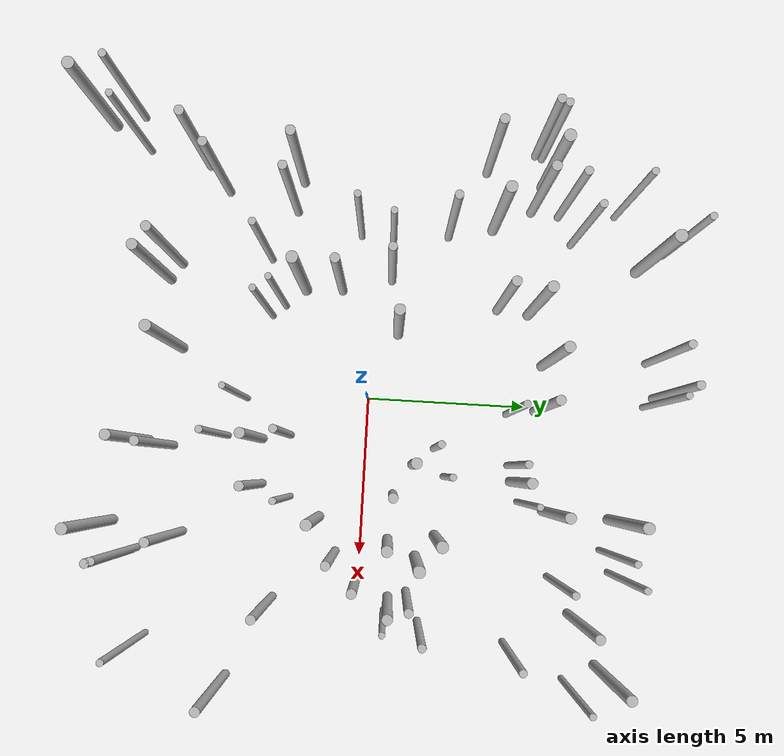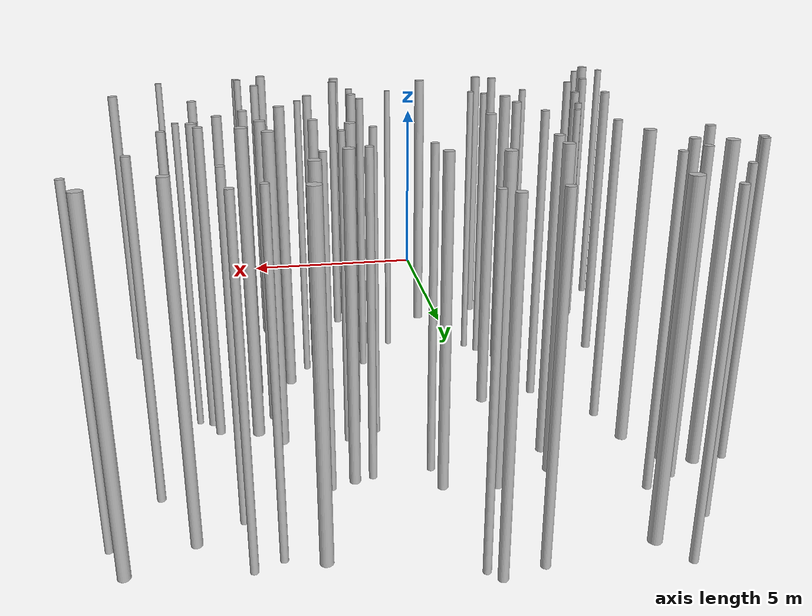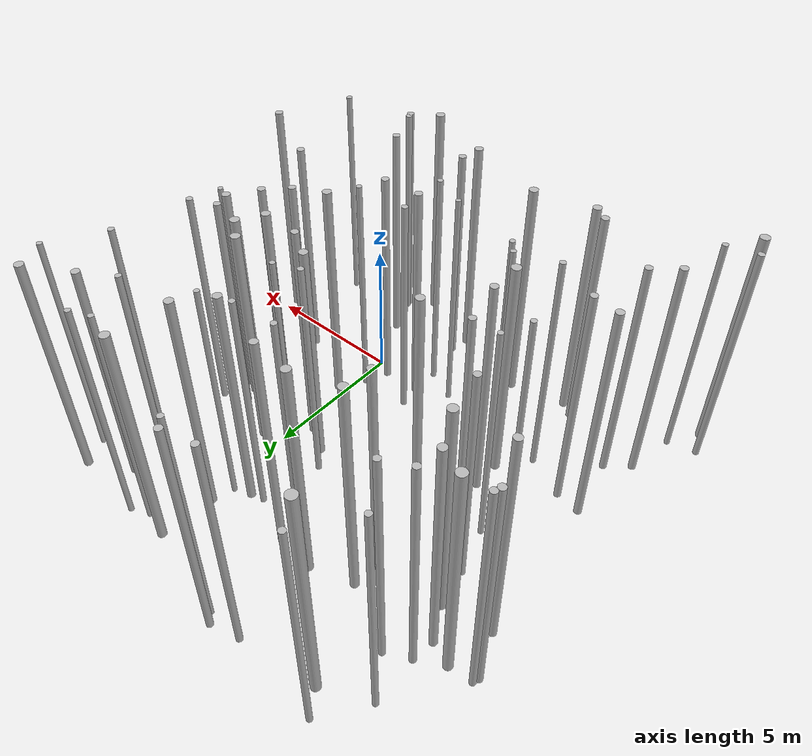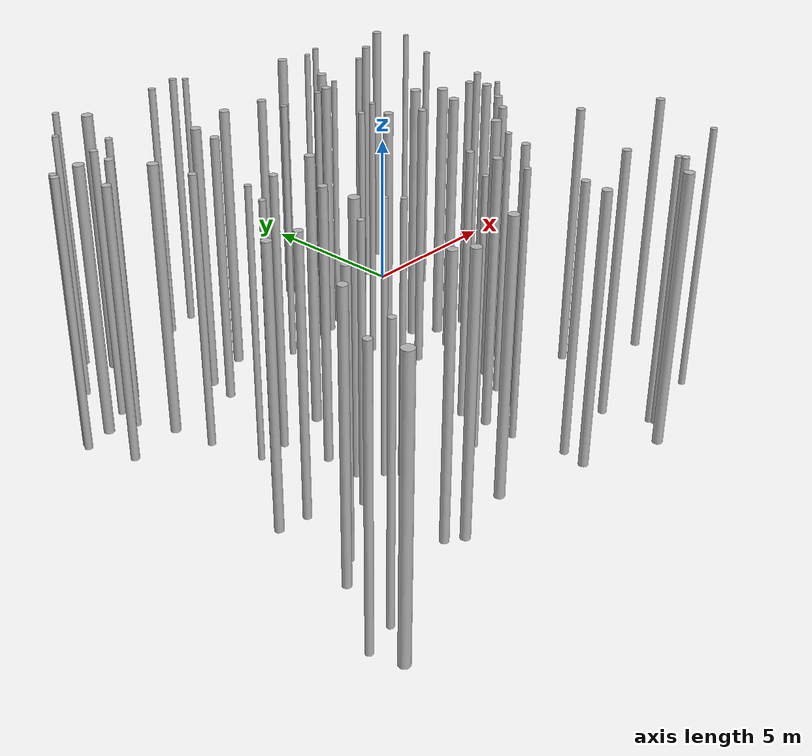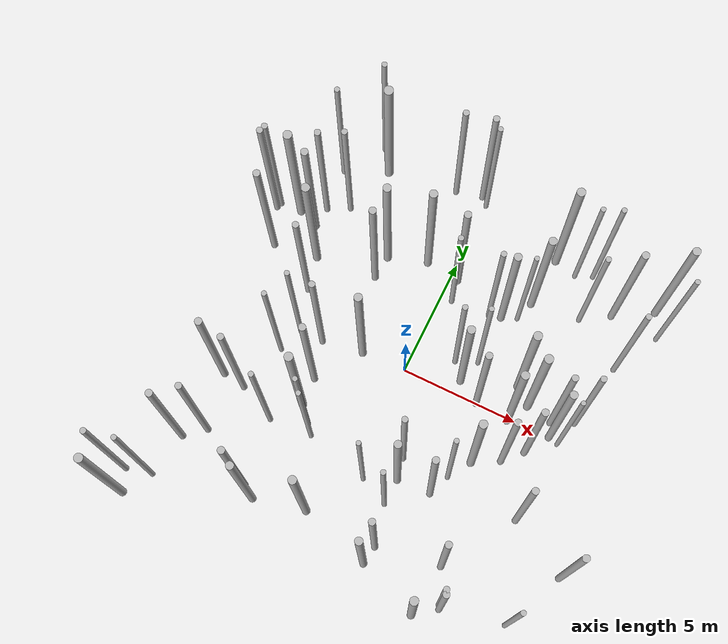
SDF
<sdf version="1.4">
 <world name="default">
  <scene><shadows>false</shadows></scene>
  <model name="forest">
   <static>true</static>
   <link name="tree0">
    <pose>-5.968594018720914 2.4226567751765558 0 0 0 0.825688294500559</pose>
    <visual name="visual">
     <material>
      <script><uri>model://tree_simple/scripts</uri><uri>model://tree_simple/materials/textures</uri></script>
     </material>
     <geometry><cylinder><radius>0.13771336701674056</radius><length>10</length></cylinder></geometry>
    </visual>
    <collision name="collision">
     <geometry><cylinder><radius>0.13771336701674056</radius><length>10</length></cylinder></geometry>
     <max_contacts>0</max_contacts>
    </collision>
   </link>
   <link name="tree1">
    <pose>-5.828001783962851 -0.5855949825237836 0 0 0 5.593154927796894</pose>
    <visual name="visual">
     <material>
      <script><uri>model://tree_simple/scripts</uri><uri>model://tree_simple/materials/textures</uri></script>
     </material>
     <geometry><cylinder><radius>0.11154716958372508</radius><length>10</length></cylinder></geometry>
    </visual>
    <collision name="collision">
     <geometry><cylinder><radius>0.11154716958372508</radius><length>10</length></cylinder></geometry>
     <max_contacts>0</max_contacts>
    </collision>
   </link>
   <link name="tree2">
    <pose>-8.2957308520775 3.642921222950452 0 0 0 3.2755186130311182</pose>
    <visual name="visual">
     <material>
      <script><uri>model://tree_simple/scripts</uri><uri>model://tree_simple/materials/textures</uri></script>
     </material>
     <geometry><cylinder><radius>0.15237272965991247</radius><length>10</length></cylinder></geometry>
    </visual>
    <collision name="collision">
     <geometry><cylinder><radius>0.15237272965991247</radius><length>10</length></cylinder></geometry>
     <max_contacts>0</max_contacts>
    </collision>
   </link>
   <link name="tree3">
    <pose>-4.3250576620407095 0.5497889428312561 0 0 0 4.661224470194231</pose>
    <visual name="visual">
     <material>
      <script><uri>model://tree_simple/scripts</uri><uri>model://tree_simple/materials/textures</uri></script>
     </material>
     <geometry><cylinder><radius>0.13722675284932398</radius><length>10</length></cylinder></geometry>
    </visual>
    <collision name="collision">
     <geometry><cylinder><radius>0.13722675284932398</radius><length>10</length></cylinder></geometry>
     <max_contacts>0</max_contacts>
    </collision>
   </link>
   <link name="tree4">
    <pose>-6.991047748544272 8.170897677864943 0 0 0 1.2887613671992935</pose>
    <visual name="visual">
     <material>
      <script><uri>model://tree_simple/scripts</uri><uri>model://tree_simple/materials/textures</uri></script>
     </material>
     <geometry><cylinder><radius>0.11570327790955867</radius><length>10</length></cylinder></geometry>
    </visual>
    <collision name="collision">
     <geometry><cylinder><radius>0.11570327790955867</radius><length>10</length></cylinder></geometry>
     <max_contacts>0</max_contacts>
    </collision>
   </link>
   <link name="tree5">
    <pose>4.609959606334741 8.2411828639138 0 0 0 0.1738286364164625</pose>
    <visual name="visual">
     <material>
      <script><uri>model://tree_simple/scripts</uri><uri>model://tree_simple/materials/textures</uri></script>
     </material>
     <geometry><cylinder><radius>0.10880113426822638</radius><length>10</length></cylinder></geometry>
    </visual>
    <collision name="collision">
     <geometry><cylinder><radius>0.10880113426822638</radius><length>10</length></cylinder></geometry>
     <max_contacts>0</max_contacts>
    </collision>
   </link>
   <link name="tree6">
    <pose>8.58407813529724 8.262892080322889 0 0 0 4.68353519349898</pose>
    <visual name="visual">
     <material>
      <script><uri>model://tree_simple/scripts</uri><uri>model://tree_simple/materials/textures</uri></script>
     </material>
     <geometry><cylinder><radius>0.17228464868539978</radius><length>10</length></cylinder></geometry>
    </visual>
    <collision name="collision">
     <geometry><cylinder><radius>0.17228464868539978</radius><length>10</length></cylinder></geometry>
     <max_contacts>0</max_contacts>
    </collision>
   </link>
   <link name="tree7">
    <pose>1.426253436714882 2.306528859032028 0 0 0 0.12005729670360911</pose>
    <visual name="visual">
     <material>
      <script><uri>model://tree_simple/scripts</uri><uri>model://tree_simple/materials/textures</uri></script>
     </material>
     <geometry><cylinder><radius>0.11951974037676621</radius><length>10</length></cylinder></geometry>
    </visual>
    <collision name="collision">
     <geometry><cylinder><radius>0.11951974037676621</radius><length>10</length></cylinder></geometry>
     <max_contacts>0</max_contacts>
    </collision>
   </link>
   <link name="tree8">
    <pose>-3.5064733958601435 4.257433674104391 0 0 0 2.7694657819371438</pose>
    <visual name="visual">
     <material>
      <script><uri>model://tree_simple/scripts</uri><uri>model://tree_simple/materials/textures</uri></script>
     </material>
     <geometry><cylinder><radius>0.1556597243528578</radius><length>10</length></cylinder></geometry>
    </visual>
    <collision name="collision">
     <geometry><cylinder><radius>0.1556597243528578</radius><length>10</length></cylinder></geometry>
     <max_contacts>0</max_contacts>
    </collision>
   </link>
   <link name="tree9">
    <pose>3.361266804124936 -2.5598034326964347 0 0 0 2.018573439283504</pose>
    <visual name="visual">
     <material>
      <script><uri>model://tree_simple/scripts</uri><uri>model://tree_simple/materials/textures</uri></script>
     </material>
     <geometry><cylinder><radius>0.11120147072177258</radius><length>10</length></cylinder></geometry>
    </visual>
    <collision name="collision">
     <geometry><cylinder><radius>0.11120147072177258</radius><length>10</length></cylinder></geometry>
     <max_contacts>0</max_contacts>
    </collision>
   </link>
   <link name="tree10">
    <pose>-1.9375332446840758 9.519367999112273 0 0 0 2.309303102979125</pose>
    <visual name="visual">
     <material>
      <script><uri>model://tree_simple/scripts</uri><uri>model://tree_simple/materials/textures</uri></script>
     </material>
     <geometry><cylinder><radius>0.13176360427735104</radius><length>10</length></cylinder></geometry>
    </visual>
    <collision name="collision">
     <geometry><cylinder><radius>0.13176360427735104</radius><length>10</length></cylinder></geometry>
     <max_contacts>0</max_contacts>
    </collision>
   </link>
   <link name="tree11">
    <pose>2.9750757174297995 -3.565608576960373 0 0 0 3.849586280517289</pose>
    <visual name="visual">
     <material>
      <script><uri>model://tree_simple/scripts</uri><uri>model://tree_simple/materials/textures</uri></script>
     </material>
     <geometry><cylinder><radius>0.14992198799098277</radius><length>10</length></cylinder></geometry>
    </visual>
    <collision name="collision">
     <geometry><cylinder><radius>0.14992198799098277</radius><length>10</length></cylinder></geometry>
     <max_contacts>0</max_contacts>
    </collision>
   </link>
   <link name="tree12">
    <pose>-6.89235235989802 6.208266722127604 0 0 0 4.798240857673464</pose>
    <visual name="visual">
     <material>
      <script><uri>model://tree_simple/scripts</uri><uri>model://tree_simple/materials/textures</uri></script>
     </material>
     <geometry><cylinder><radius>0.13606812227808118</radius><length>10</length></cylinder></geometry>
    </visual>
    <collision name="collision">
     <geometry><cylinder><radius>0.13606812227808118</radius><length>10</length></cylinder></geometry>
     <max_contacts>0</max_contacts>
    </collision>
   </link>
   <link name="tree13">
    <pose>2.420686780733387 5.026988306870537 0 0 0 0.47964367865791624</pose>
    <visual name="visual">
     <material>
      <script><uri>model://tree_simple/scripts</uri><uri>model://tree_simple/materials/textures</uri></script>
     </material>
     <geometry><cylinder><radius>0.16586756735306676</radius><length>10</length></cylinder></geometry>
    </visual>
    <collision name="collision">
     <geometry><cylinder><radius>0.16586756735306676</radius><length>10</length></cylinder></geometry>
     <max_contacts>0</max_contacts>
    </collision>
   </link>
   <link name="tree14">
    <pose>-0.4151343956800968 9.496445676780269 0 0 0 0.966860432303875</pose>
    <visual name="visual">
     <material>
      <script><uri>model://tree_simple/scripts</uri><uri>model://tree_simple/materials/textures</uri></script>
     </material>
     <geometry><cylinder><radius>0.11132681714849964</radius><length>10</length></cylinder></geometry>
    </visual>
    <collision name="collision">
     <geometry><cylinder><radius>0.11132681714849964</radius><length>10</length></cylinder></geometry>
     <max_contacts>0</max_contacts>
    </collision>
   </link>
   <link name="tree15">
    <pose>-5.118779475989152 9.02702842820019 0 0 0 4.689941528728412</pose>
    <visual name="visual">
     <material>
      <script><uri>model://tree_simple/scripts</uri><uri>model://tree_simple/materials/textures</uri></script>
     </material>
     <geometry><cylinder><radius>0.1969767432093354</radius><length>10</length></cylinder></geometry>
    </visual>
    <collision name="collision">
     <geometry><cylinder><radius>0.1969767432093354</radius><length>10</length></cylinder></geometry>
     <max_contacts>0</max_contacts>
    </collision>
   </link>
   <link name="tree16">
    <pose>-3.236185315253312 -3.0788243685111327 0 0 0 2.0297474010515537</pose>
    <visual name="visual">
     <material>
      <script><uri>model://tree_simple/scripts</uri><uri>model://tree_simple/materials/textures</uri></script>
     </material>
     <geometry><cylinder><radius>0.10836658153245907</radius><length>10</length></cylinder></geometry>
    </visual>
    <collision name="collision">
     <geometry><cylinder><radius>0.10836658153245907</radius><length>10</length></cylinder></geometry>
     <max_contacts>0</max_contacts>
    </collision>
   </link>
   <link name="tree17">
    <pose>7.405900594235536 2.061427385674456 0 0 0 4.909526667485846</pose>
    <visual name="visual">
     <material>
      <script><uri>model://tree_simple/scripts</uri><uri>model://tree_simple/materials/textures</uri></script>
     </material>
     <geometry><cylinder><radius>0.1316412135259116</radius><length>10</length></cylinder></geometry>
    </visual>
    <collision name="collision">
     <geometry><cylinder><radius>0.1316412135259116</radius><length>10</length></cylinder></geometry>
     <max_contacts>0</max_contacts>
    </collision>
   </link>
   <link name="tree18">
    <pose>-7.120086417285048 -5.2619278738806985 0 0 0 5.370767618848834</pose>
    <visual name="visual">
     <material>
      <script><uri>model://tree_simple/scripts</uri><uri>model://tree_simple/materials/textures</uri></script>
     </material>
     <geometry><cylinder><radius>0.14448103530684364</radius><length>10</length></cylinder></geometry>
    </visual>
    <collision name="collision">
     <geometry><cylinder><radius>0.14448103530684364</radius><length>10</length></cylinder></geometry>
     <max_contacts>0</max_contacts>
    </collision>
   </link>
   <link name="tree19">
    <pose>-0.06983729462564625 5.733192255346749 0 0 0 4.584554173781753</pose>
    <visual name="visual">
     <material>
      <script><uri>model://tree_simple/scripts</uri><uri>model://tree_simple/materials/textures</uri></script>
     </material>
     <geometry><cylinder><radius>0.15556807396967115</radius><length>10</length></cylinder></geometry>
    </visual>
    <collision name="collision">
     <geometry><cylinder><radius>0.15556807396967115</radius><length>10</length></cylinder></geometry>
     <max_contacts>0</max_contacts>
    </collision>
   </link>
   <link name="tree20">
    <pose>-5.754004670592677 9.9491894694399 0 0 0 1.8481611190901794</pose>
    <visual name="visual">
     <material>
      <script><uri>model://tree_simple/scripts</uri><uri>model://tree_simple/materials/textures</uri></script>
     </material>
     <geometry><cylinder><radius>0.11802475230446005</radius><length>10</length></cylinder></geometry>
    </visual>
    <collision name="collision">
     <geometry><cylinder><radius>0.11802475230446005</radius><length>10</length></cylinder></geometry>
     <max_contacts>0</max_contacts>
    </collision>
   </link>
   <link name="tree21">
    <pose>6.857520354085882 -2.990534335259065 0 0 0 4.708311420414509</pose>
    <visual name="visual">
     <material>
      <script><uri>model://tree_simple/scripts</uri><uri>model://tree_simple/materials/textures</uri></script>
     </material>
     <geometry><cylinder><radius>0.15037674730255285</radius><length>10</length></cylinder></geometry>
    </visual>
    <collision name="collision">
     <geometry><cylinder><radius>0.15037674730255285</radius><length>10</length></cylinder></geometry>
     <max_contacts>0</max_contacts>
    </collision>
   </link>
   <link name="tree22">
    <pose>3.1053650370465036 5.296184597026494 0 0 0 2.993373244165872</pose>
    <visual name="visual">
     <material>
      <script><uri>model://tree_simple/scripts</uri><uri>model://tree_simple/materials/textures</uri></script>
     </material>
     <geometry><cylinder><radius>0.10431982419950148</radius><length>10</length></cylinder></geometry>
    </visual>
    <collision name="collision">
     <geometry><cylinder><radius>0.10431982419950148</radius><length>10</length></cylinder></geometry>
     <max_contacts>0</max_contacts>
    </collision>
   </link>
   <link name="tree23">
    <pose>9.106805909481785 7.151303322337881 0 0 0 1.8867558612835336</pose>
    <visual name="visual">
     <material>
      <script><uri>model://tree_simple/scripts</uri><uri>model://tree_simple/materials/textures</uri></script>
     </material>
     <geometry><cylinder><radius>0.10812677616028757</radius><length>10</length></cylinder></geometry>
    </visual>
    <collision name="collision">
     <geometry><cylinder><radius>0.10812677616028757</radius><length>10</length></cylinder></geometry>
     <max_contacts>0</max_contacts>
    </collision>
   </link>
   <link name="tree24">
    <pose>-8.903828635652673 5.53219750506331 0 0 0 0.23576565852500028</pose>
    <visual name="visual">
     <material>
      <script><uri>model://tree_simple/scripts</uri><uri>model://tree_simple/materials/textures</uri></script>
     </material>
     <geometry><cylinder><radius>0.1285607147958232</radius><length>10</length></cylinder></geometry>
    </visual>
    <collision name="collision">
     <geometry><cylinder><radius>0.1285607147958232</radius><length>10</length></cylinder></geometry>
     <max_contacts>0</max_contacts>
    </collision>
   </link>
   <link name="tree25">
    <pose>7.095290631479539 0.8680716599876135 0 0 0 1.1310822735819575</pose>
    <visual name="visual">
     <material>
      <script><uri>model://tree_simple/scripts</uri><uri>model://tree_simple/materials/textures</uri></script>
     </material>
     <geometry><cylinder><radius>0.10191237410525186</radius><length>10</length></cylinder></geometry>
    </visual>
    <collision name="collision">
     <geometry><cylinder><radius>0.10191237410525186</radius><length>10</length></cylinder></geometry>
     <max_contacts>0</max_contacts>
    </collision>
   </link>
   <link name="tree26">
    <pose>1.820325642893275 -6.7162266204773875 0 0 0 0.92250688438648</pose>
    <visual name="visual">
     <material>
      <script><uri>model://tree_simple/scripts</uri><uri>model://tree_simple/materials/textures</uri></script>
     </material>
     <geometry><cylinder><radius>0.1477749294235185</radius><length>10</length></cylinder></geometry>
    </visual>
    <collision name="collision">
     <geometry><cylinder><radius>0.1477749294235185</radius><length>10</length></cylinder></geometry>
     <max_contacts>0</max_contacts>
    </collision>
   </link>
   <link name="tree27">
    <pose>-9.573703991546287 -8.385168238597425 0 0 0 6.149187091643688</pose>
    <visual name="visual">
     <material>
      <script><uri>model://tree_simple/scripts</uri><uri>model://tree_simple/materials/textures</uri></script>
     </material>
     <geometry><cylinder><radius>0.12777959781159834</radius><length>10</length></cylinder></geometry>
    </visual>
    <collision name="collision">
     <geometry><cylinder><radius>0.12777959781159834</radius><length>10</length></cylinder></geometry>
     <max_contacts>0</max_contacts>
    </collision>
   </link>
   <link name="tree28">
    <pose>-1.5803191252205586 -6.608423695369137 0 0 0 1.9834478268091063</pose>
    <visual name="visual">
     <material>
      <script><uri>model://tree_simple/scripts</uri><uri>model://tree_simple/materials/textures</uri></script>
     </material>
     <geometry><cylinder><radius>0.18058393793304878</radius><length>10</length></cylinder></geometry>
    </visual>
    <collision name="collision">
     <geometry><cylinder><radius>0.18058393793304878</radius><length>10</length></cylinder></geometry>
     <max_contacts>0</max_contacts>
    </collision>
   </link>
   <link name="tree29">
    <pose>7.966323172456605 5.053057954234525 0 0 0 1.6197997222700842</pose>
    <visual name="visual">
     <material>
      <script><uri>model://tree_simple/scripts</uri><uri>model://tree_simple/materials/textures</uri></script>
     </material>
     <geometry><cylinder><radius>0.12444496203429443</radius><length>10</length></cylinder></geometry>
    </visual>
    <collision name="collision">
     <geometry><cylinder><radius>0.12444496203429443</radius><length>10</length></cylinder></geometry>
     <max_contacts>0</max_contacts>
    </collision>
   </link>
   <link name="tree30">
    <pose>1.4188286956625422 -3.641463147223993 0 0 0 2.283556879866112</pose>
    <visual name="visual">
     <material>
      <script><uri>model://tree_simple/scripts</uri><uri>model://tree_simple/materials/textures</uri></script>
     </material>
     <geometry><cylinder><radius>0.16357087887364252</radius><length>10</length></cylinder></geometry>
    </visual>
    <collision name="collision">
     <geometry><cylinder><radius>0.16357087887364252</radius><length>10</length></cylinder></geometry>
     <max_contacts>0</max_contacts>
    </collision>
   </link>
   <link name="tree31">
    <pose>-3.8429903928990816 -2.4149224378773386 0 0 0 0.6424675390451487</pose>
    <visual name="visual">
     <material>
      <script><uri>model://tree_simple/scripts</uri><uri>model://tree_simple/materials/textures</uri></script>
     </material>
     <geometry><cylinder><radius>0.18695418486333784</radius><length>10</length></cylinder></geometry>
    </visual>
    <collision name="collision">
     <geometry><cylinder><radius>0.18695418486333784</radius><length>10</length></cylinder></geometry>
     <max_contacts>0</max_contacts>
    </collision>
   </link>
   <link name="tree32">
    <pose>5.191348814736827 1.8603508150682853 0 0 0 0.1890476759338414</pose>
    <visual name="visual">
     <material>
      <script><uri>model://tree_simple/scripts</uri><uri>model://tree_simple/materials/textures</uri></script>
     </material>
     <geometry><cylinder><radius>0.18805293368358217</radius><length>10</length></cylinder></geometry>
    </visual>
    <collision name="collision">
     <geometry><cylinder><radius>0.18805293368358217</radius><length>10</length></cylinder></geometry>
     <max_contacts>0</max_contacts>
    </collision>
   </link>
   <link name="tree33">
    <pose>2.3755383060601325 2.6932476068144453 0 0 0 5.159059644551172</pose>
    <visual name="visual">
     <material>
      <script><uri>model://tree_simple/scripts</uri><uri>model://tree_simple/materials/textures</uri></script>
     </material>
     <geometry><cylinder><radius>0.10867067285872588</radius><length>10</length></cylinder></geometry>
    </visual>
    <collision name="collision">
     <geometry><cylinder><radius>0.10867067285872588</radius><length>10</length></cylinder></geometry>
     <max_contacts>0</max_contacts>
    </collision>
   </link>
   <link name="tree34">
    <pose>5.421670343977162 -7.76646622194884 0 0 0 1.655044151870331</pose>
    <visual name="visual">
     <material>
      <script><uri>model://tree_simple/scripts</uri><uri>model://tree_simple/materials/textures</uri></script>
     </material>
     <geometry><cylinder><radius>0.13042688494706514</radius><length>10</length></cylinder></geometry>
    </visual>
    <collision name="collision">
     <geometry><cylinder><radius>0.13042688494706514</radius><length>10</length></cylinder></geometry>
     <max_contacts>0</max_contacts>
    </collision>
   </link>
   <link name="tree35">
    <pose>-2.4734108758071187 0.8587451980196352 0 0 0 5.858357580610894</pose>
    <visual name="visual">
     <material>
      <script><uri>model://tree_simple/scripts</uri><uri>model://tree_simple/materials/textures</uri></script>
     </material>
     <geometry><cylinder><radius>0.17384620314768345</radius><length>10</length></cylinder></geometry>
    </visual>
    <collision name="collision">
     <geometry><cylinder><radius>0.17384620314768345</radius><length>10</length></cylinder></geometry>
     <max_contacts>0</max_contacts>
    </collision>
   </link>
   <link name="tree36">
    <pose>-3.9538614986258374 -7.148537569144011 0 0 0 1.6409422869358408</pose>
    <visual name="visual">
     <material>
      <script><uri>model://tree_simple/scripts</uri><uri>model://tree_simple/materials/textures</uri></script>
     </material>
     <geometry><cylinder><radius>0.1711696486110154</radius><length>10</length></cylinder></geometry>
    </visual>
    <collision name="collision">
     <geometry><cylinder><radius>0.1711696486110154</radius><length>10</length></cylinder></geometry>
     <max_contacts>0</max_contacts>
    </collision>
   </link>
   <link name="tree37">
    <pose>-6.293991333113434 3.9549458969739053 0 0 0 1.4372819613181784</pose>
    <visual name="visual">
     <material>
      <script><uri>model://tree_simple/scripts</uri><uri>model://tree_simple/materials/textures</uri></script>
     </material>
     <geometry><cylinder><radius>0.18186266375391966</radius><length>10</length></cylinder></geometry>
    </visual>
    <collision name="collision">
     <geometry><cylinder><radius>0.18186266375391966</radius><length>10</length></cylinder></geometry>
     <max_contacts>0</max_contacts>
    </collision>
   </link>
   <link name="tree38">
    <pose>4.519721657119771 -8.678377626454413 0 0 0 5.123980674134917</pose>
    <visual name="visual">
     <material>
      <script><uri>model://tree_simple/scripts</uri><uri>model://tree_simple/materials/textures</uri></script>
     </material>
     <geometry><cylinder><radius>0.18120492340941927</radius><length>10</length></cylinder></geometry>
    </visual>
    <collision name="collision">
     <geometry><cylinder><radius>0.18120492340941927</radius><length>10</length></cylinder></geometry>
     <max_contacts>0</max_contacts>
    </collision>
   </link>
   <link name="tree39">
    <pose>6.409522036700849 1.6152253123498728 0 0 0 0.10900541601390826</pose>
    <visual name="visual">
     <material>
      <script><uri>model://tree_simple/scripts</uri><uri>model://tree_simple/materials/textures</uri></script>
     </material>
     <geometry><cylinder><radius>0.1436089715093663</radius><length>10</length></cylinder></geometry>
    </visual>
    <collision name="collision">
     <geometry><cylinder><radius>0.1436089715093663</radius><length>10</length></cylinder></geometry>
     <max_contacts>0</max_contacts>
    </collision>
   </link>
   <link name="tree40">
    <pose>-6.991997852375922 5.258146686161487 0 0 0 1.8523994256795613</pose>
    <visual name="visual">
     <material>
      <script><uri>model://tree_simple/scripts</uri><uri>model://tree_simple/materials/textures</uri></script>
     </material>
     <geometry><cylinder><radius>0.15867315324425776</radius><length>10</length></cylinder></geometry>
    </visual>
    <collision name="collision">
     <geometry><cylinder><radius>0.15867315324425776</radius><length>10</length></cylinder></geometry>
     <max_contacts>0</max_contacts>
    </collision>
   </link>
   <link name="tree41">
    <pose>-5.3953867548250845 0.5307048480872147 0 0 0 0.3375293036361192</pose>
    <visual name="visual">
     <material>
      <script><uri>model://tree_simple/scripts</uri><uri>model://tree_simple/materials/textures</uri></script>
     </material>
     <geometry><cylinder><radius>0.10916437988633512</radius><length>10</length></cylinder></geometry>
    </visual>
    <collision name="collision">
     <geometry><cylinder><radius>0.10916437988633512</radius><length>10</length></cylinder></geometry>
     <max_contacts>0</max_contacts>
    </collision>
   </link>
   <link name="tree42">
    <pose>9.6208099402171 -4.456824181064059 0 0 0 2.2227203640238105</pose>
    <visual name="visual">
     <material>
      <script><uri>model://tree_simple/scripts</uri><uri>model://tree_simple/materials/textures</uri></script>
     </material>
     <geometry><cylinder><radius>0.15775370338942163</radius><length>10</length></cylinder></geometry>
    </visual>
    <collision name="collision">
     <geometry><cylinder><radius>0.15775370338942163</radius><length>10</length></cylinder></geometry>
     <max_contacts>0</max_contacts>
    </collision>
   </link>
   <link name="tree43">
    <pose>5.624773286644306 6.472744222384282 0 0 0 3.24729564594556</pose>
    <visual name="visual">
     <material>
      <script><uri>model://tree_simple/scripts</uri><uri>model://tree_simple/materials/textures</uri></script>
     </material>
     <geometry><cylinder><radius>0.1184961532916765</radius><length>10</length></cylinder></geometry>
    </visual>
    <collision name="collision">
     <geometry><cylinder><radius>0.1184961532916765</radius><length>10</length></cylinder></geometry>
     <max_contacts>0</max_contacts>
    </collision>
   </link>
   <link name="tree44">
    <pose>-2.873533445413883 -3.5219805734937815 0 0 0 0.29355622968325396</pose>
    <visual name="visual">
     <material>
      <script><uri>model://tree_simple/scripts</uri><uri>model://tree_simple/materials/textures</uri></script>
     </material>
     <geometry><cylinder><radius>0.1078697441771461</radius><length>10</length></cylinder></geometry>
    </visual>
    <collision name="collision">
     <geometry><cylinder><radius>0.1078697441771461</radius><length>10</length></cylinder></geometry>
     <max_contacts>0</max_contacts>
    </collision>
   </link>
   <link name="tree45">
    <pose>3.541961245735763 8.506148355797276 0 0 0 6.142769992386143</pose>
    <visual name="visual">
     <material>
      <script><uri>model://tree_simple/scripts</uri><uri>model://tree_simple/materials/textures</uri></script>
     </material>
     <geometry><cylinder><radius>0.18296220330348975</radius><length>10</length></cylinder></geometry>
    </visual>
    <collision name="collision">
     <geometry><cylinder><radius>0.18296220330348975</radius><length>10</length></cylinder></geometry>
     <max_contacts>0</max_contacts>
    </collision>
   </link>
   <link name="tree46">
    <pose>4.6484998814302525 0.8838869254016011 0 0 0 0.34782628612025224</pose>
    <visual name="visual">
     <material>
      <script><uri>model://tree_simple/scripts</uri><uri>model://tree_simple/materials/textures</uri></script>
     </material>
     <geometry><cylinder><radius>0.17415434908779687</radius><length>10</length></cylinder></geometry>
    </visual>
    <collision name="collision">
     <geometry><cylinder><radius>0.17415434908779687</radius><length>10</length></cylinder></geometry>
     <max_contacts>0</max_contacts>
    </collision>
   </link>
   <link name="tree47">
    <pose>-1.6514301052179992 5.915318500923902 0 0 0 5.606321696756497</pose>
    <visual name="visual">
     <material>
      <script><uri>model://tree_simple/scripts</uri><uri>model://tree_simple/materials/textures</uri></script>
     </material>
     <geometry><cylinder><radius>0.17523359467431823</radius><length>10</length></cylinder></geometry>
    </visual>
    <collision name="collision">
     <geometry><cylinder><radius>0.17523359467431823</radius><length>10</length></cylinder></geometry>
     <max_contacts>0</max_contacts>
    </collision>
   </link>
   <link name="tree48">
    <pose>-5.93926611711985 6.696761262510762 0 0 0 3.7540854902760556</pose>
    <visual name="visual">
     <material>
      <script><uri>model://tree_simple/scripts</uri><uri>model://tree_simple/materials/textures</uri></script>
     </material>
     <geometry><cylinder><radius>0.12639500376045826</radius><length>10</length></cylinder></geometry>
    </visual>
    <collision name="collision">
     <geometry><cylinder><radius>0.12639500376045826</radius><length>10</length></cylinder></geometry>
     <max_contacts>0</max_contacts>
    </collision>
   </link>
   <link name="tree49">
    <pose>-4.5147369238869794 -6.7726202108122475 0 0 0 5.913883836497319</pose>
    <visual name="visual">
     <material>
      <script><uri>model://tree_simple/scripts</uri><uri>model://tree_simple/materials/textures</uri></script>
     </material>
     <geometry><cylinder><radius>0.1570276029211407</radius><length>10</length></cylinder></geometry>
    </visual>
    <collision name="collision">
     <geometry><cylinder><radius>0.1570276029211407</radius><length>10</length></cylinder></geometry>
     <max_contacts>0</max_contacts>
    </collision>
   </link>
   <link name="tree50">
    <pose>-0.7431164445705001 9.817711829863299 0 0 0 5.1220890056809685</pose>
    <visual name="visual">
     <material>
      <script><uri>model://tree_simple/scripts</uri><uri>model://tree_simple/materials/textures</uri></script>
     </material>
     <geometry><cylinder><radius>0.13833704122755008</radius><length>10</length></cylinder></geometry>
    </visual>
    <collision name="collision">
     <geometry><cylinder><radius>0.13833704122755008</radius><length>10</length></cylinder></geometry>
     <max_contacts>0</max_contacts>
    </collision>
   </link>
   <link name="tree51">
    <pose>6.863206512790313 7.253271997862932 0 0 0 6.229453334662479</pose>
    <visual name="visual">
     <material>
      <script><uri>model://tree_simple/scripts</uri><uri>model://tree_simple/materials/textures</uri></script>
     </material>
     <geometry><cylinder><radius>0.1576536957247726</radius><length>10</length></cylinder></geometry>
    </visual>
    <collision name="collision">
     <geometry><cylinder><radius>0.1576536957247726</radius><length>10</length></cylinder></geometry>
     <max_contacts>0</max_contacts>
    </collision>
   </link>
   <link name="tree52">
    <pose>-3.889363079549968 -1.1471925138931471 0 0 0 6.138746925229345</pose>
    <visual name="visual">
     <material>
      <script><uri>model://tree_simple/scripts</uri><uri>model://tree_simple/materials/textures</uri></script>
     </material>
     <geometry><cylinder><radius>0.15383020623061586</radius><length>10</length></cylinder></geometry>
    </visual>
    <collision name="collision">
     <geometry><cylinder><radius>0.15383020623061586</radius><length>10</length></cylinder></geometry>
     <max_contacts>0</max_contacts>
    </collision>
   </link>
   <link name="tree53">
    <pose>4.006752376021341 -1.5331163886781987 0 0 0 4.919441682793208</pose>
    <visual name="visual">
     <material>
      <script><uri>model://tree_simple/scripts</uri><uri>model://tree_simple/materials/textures</uri></script>
     </material>
     <geometry><cylinder><radius>0.1781657605818685</radius><length>10</length></cylinder></geometry>
    </visual>
    <collision name="collision">
     <geometry><cylinder><radius>0.1781657605818685</radius><length>10</length></cylinder></geometry>
     <max_contacts>0</max_contacts>
    </collision>
   </link>
   <link name="tree54">
    <pose>1.6913958006090724 -7.5825489789915785 0 0 0 4.4545272223046695</pose>
    <visual name="visual">
     <material>
      <script><uri>model://tree_simple/scripts</uri><uri>model://tree_simple/materials/textures</uri></script>
     </material>
     <geometry><cylinder><radius>0.16893462925578145</radius><length>10</length></cylinder></geometry>
    </visual>
    <collision name="collision">
     <geometry><cylinder><radius>0.16893462925578145</radius><length>10</length></cylinder></geometry>
     <max_contacts>0</max_contacts>
    </collision>
   </link>
   <link name="tree55">
    <pose>3.3729581505657986 6.200890843935866 0 0 0 3.1084602028521844</pose>
    <visual name="visual">
     <material>
      <script><uri>model://tree_simple/scripts</uri><uri>model://tree_simple/materials/textures</uri></script>
     </material>
     <geometry><cylinder><radius>0.17138559856823354</radius><length>10</length></cylinder></geometry>
    </visual>
    <collision name="collision">
     <geometry><cylinder><radius>0.17138559856823354</radius><length>10</length></cylinder></geometry>
     <max_contacts>0</max_contacts>
    </collision>
   </link>
   <link name="tree56">
    <pose>-4.83626882294895 -3.6486874701756378 0 0 0 3.897682728275936</pose>
    <visual name="visual">
     <material>
      <script><uri>model://tree_simple/scripts</uri><uri>model://tree_simple/materials/textures</uri></script>
     </material>
     <geometry><cylinder><radius>0.11876220584320432</radius><length>10</length></cylinder></geometry>
    </visual>
    <collision name="collision">
     <geometry><cylinder><radius>0.11876220584320432</radius><length>10</length></cylinder></geometry>
     <max_contacts>0</max_contacts>
    </collision>
   </link>
   <link name="tree57">
    <pose>-3.400731352425945 5.338326887114885 0 0 0 5.046233624211906</pose>
    <visual name="visual">
     <material>
      <script><uri>model://tree_simple/scripts</uri><uri>model://tree_simple/materials/textures</uri></script>
     </material>
     <geometry><cylinder><radius>0.1761458001003568</radius><length>10</length></cylinder></geometry>
    </visual>
    <collision name="collision">
     <geometry><cylinder><radius>0.1761458001003568</radius><length>10</length></cylinder></geometry>
     <max_contacts>0</max_contacts>
    </collision>
   </link>
   <link name="tree58">
    <pose>5.497461187917542 -7.944840120458974 0 0 0 3.5051504271337457</pose>
    <visual name="visual">
     <material>
      <script><uri>model://tree_simple/scripts</uri><uri>model://tree_simple/materials/textures</uri></script>
     </material>
     <geometry><cylinder><radius>0.14258252284879386</radius><length>10</length></cylinder></geometry>
    </visual>
    <collision name="collision">
     <geometry><cylinder><radius>0.14258252284879386</radius><length>10</length></cylinder></geometry>
     <max_contacts>0</max_contacts>
    </collision>
   </link>
   <link name="tree59">
    <pose>5.16878047414783 -0.9019868385315828 0 0 0 4.575443581286427</pose>
    <visual name="visual">
     <material>
      <script><uri>model://tree_simple/scripts</uri><uri>model://tree_simple/materials/textures</uri></script>
     </material>
     <geometry><cylinder><radius>0.14960842942941713</radius><length>10</length></cylinder></geometry>
    </visual>
    <collision name="collision">
     <geometry><cylinder><radius>0.14960842942941713</radius><length>10</length></cylinder></geometry>
     <max_contacts>0</max_contacts>
    </collision>
   </link>
   <link name="tree60">
    <pose>0.09571190469012691 4.7562204932397165 0 0 0 3.8659222165190195</pose>
    <visual name="visual">
     <material>
      <script><uri>model://tree_simple/scripts</uri><uri>model://tree_simple/materials/textures</uri></script>
     </material>
     <geometry><cylinder><radius>0.11775855657569656</radius><length>10</length></cylinder></geometry>
    </visual>
    <collision name="collision">
     <geometry><cylinder><radius>0.11775855657569656</radius><length>10</length></cylinder></geometry>
     <max_contacts>0</max_contacts>
    </collision>
   </link>
   <link name="tree61">
    <pose>1.8692486420508274 4.895660630931628 0 0 0 5.553401239697639</pose>
    <visual name="visual">
     <material>
      <script><uri>model://tree_simple/scripts</uri><uri>model://tree_simple/materials/textures</uri></script>
     </material>
     <geometry><cylinder><radius>0.12120064601436195</radius><length>10</length></cylinder></geometry>
    </visual>
    <collision name="collision">
     <geometry><cylinder><radius>0.12120064601436195</radius><length>10</length></cylinder></geometry>
     <max_contacts>0</max_contacts>
    </collision>
   </link>
   <link name="tree62">
    <pose>-8.00599362577814 -6.008320897477766 0 0 0 4.3551374131948</pose>
    <visual name="visual">
     <material>
      <script><uri>model://tree_simple/scripts</uri><uri>model://tree_simple/materials/textures</uri></script>
     </material>
     <geometry><cylinder><radius>0.15359482216606735</radius><length>10</length></cylinder></geometry>
    </visual>
    <collision name="collision">
     <geometry><cylinder><radius>0.15359482216606735</radius><length>10</length></cylinder></geometry>
     <max_contacts>0</max_contacts>
    </collision>
   </link>
   <link name="tree63">
    <pose>3.0758863842465285 0.9773218508245733 0 0 0 4.893164646289273</pose>
    <visual name="visual">
     <material>
      <script><uri>model://tree_simple/scripts</uri><uri>model://tree_simple/materials/textures</uri></script>
     </material>
     <geometry><cylinder><radius>0.15013309204440967</radius><length>10</length></cylinder></geometry>
    </visual>
    <collision name="collision">
     <geometry><cylinder><radius>0.15013309204440967</radius><length>10</length></cylinder></geometry>
     <max_contacts>0</max_contacts>
    </collision>
   </link>
   <link name="tree64">
    <pose>1.3776360184576912 -4.846197078725856 0 0 0 4.3104430361605015</pose>
    <visual name="visual">
     <material>
      <script><uri>model://tree_simple/scripts</uri><uri>model://tree_simple/materials/textures</uri></script>
     </material>
     <geometry><cylinder><radius>0.11502890283584506</radius><length>10</length></cylinder></geometry>
    </visual>
    <collision name="collision">
     <geometry><cylinder><radius>0.11502890283584506</radius><length>10</length></cylinder></geometry>
     <max_contacts>0</max_contacts>
    </collision>
   </link>
   <link name="tree65">
    <pose>0.04958101804271209 -4.245447012468073 0 0 0 0.01323753086099113</pose>
    <visual name="visual">
     <material>
      <script><uri>model://tree_simple/scripts</uri><uri>model://tree_simple/materials/textures</uri></script>
     </material>
     <geometry><cylinder><radius>0.10399346381419697</radius><length>10</length></cylinder></geometry>
    </visual>
    <collision name="collision">
     <geometry><cylinder><radius>0.10399346381419697</radius><length>10</length></cylinder></geometry>
     <max_contacts>0</max_contacts>
    </collision>
   </link>
   <link name="tree66">
    <pose>-8.406085447318855 -8.101935102648898 0 0 0 5.926856917787585</pose>
    <visual name="visual">
     <material>
      <script><uri>model://tree_simple/scripts</uri><uri>model://tree_simple/materials/textures</uri></script>
     </material>
     <geometry><cylinder><radius>0.11594681959222417</radius><length>10</length></cylinder></geometry>
    </visual>
    <collision name="collision">
     <geometry><cylinder><radius>0.11594681959222417</radius><length>10</length></cylinder></geometry>
     <max_contacts>0</max_contacts>
    </collision>
   </link>
   <link name="tree67">
    <pose>-7.914304684501299 5.601169918807143 0 0 0 4.022303795787184</pose>
    <visual name="visual">
     <material>
      <script><uri>model://tree_simple/scripts</uri><uri>model://tree_simple/materials/textures</uri></script>
     </material>
     <geometry><cylinder><radius>0.18920885654151237</radius><length>10</length></cylinder></geometry>
    </visual>
    <collision name="collision">
     <geometry><cylinder><radius>0.18920885654151237</radius><length>10</length></cylinder></geometry>
     <max_contacts>0</max_contacts>
    </collision>
   </link>
   <link name="tree68">
    <pose>5.3685077147427265 8.564108414652559 0 0 0 4.397832299543852</pose>
    <visual name="visual">
     <material>
      <script><uri>model://tree_simple/scripts</uri><uri>model://tree_simple/materials/textures</uri></script>
     </material>
     <geometry><cylinder><radius>0.1116641739095955</radius><length>10</length></cylinder></geometry>
    </visual>
    <collision name="collision">
     <geometry><cylinder><radius>0.1116641739095955</radius><length>10</length></cylinder></geometry>
     <max_contacts>0</max_contacts>
    </collision>
   </link>
   <link name="tree69">
    <pose>2.0209967995483424 1.6059641880397653 0 0 0 0.8407838073450897</pose>
    <visual name="visual">
     <material>
      <script><uri>model://tree_simple/scripts</uri><uri>model://tree_simple/materials/textures</uri></script>
     </material>
     <geometry><cylinder><radius>0.1705576350956956</radius><length>10</length></cylinder></geometry>
    </visual>
    <collision name="collision">
     <geometry><cylinder><radius>0.1705576350956956</radius><length>10</length></cylinder></geometry>
     <max_contacts>0</max_contacts>
    </collision>
   </link>
   <link name="tree70">
    <pose>4.431658541076857 2.4978584980876484 0 0 0 0.6720663659661815</pose>
    <visual name="visual">
     <material>
      <script><uri>model://tree_simple/scripts</uri><uri>model://tree_simple/materials/textures</uri></script>
     </material>
     <geometry><cylinder><radius>0.1846087856728343</radius><length>10</length></cylinder></geometry>
    </visual>
    <collision name="collision">
     <geometry><cylinder><radius>0.1846087856728343</radius><length>10</length></cylinder></geometry>
     <max_contacts>0</max_contacts>
    </collision>
   </link>
   <link name="tree71">
    <pose>-6.553562070161602 -2.8566398732734966 0 0 0 5.505991266314678</pose>
    <visual name="visual">
     <material>
      <script><uri>model://tree_simple/scripts</uri><uri>model://tree_simple/materials/textures</uri></script>
     </material>
     <geometry><cylinder><radius>0.14306963099984812</radius><length>10</length></cylinder></geometry>
    </visual>
    <collision name="collision">
     <geometry><cylinder><radius>0.14306963099984812</radius><length>10</length></cylinder></geometry>
     <max_contacts>0</max_contacts>
    </collision>
   </link>
   <link name="tree72">
    <pose>1.2375182767303556 -2.6681037982920275 0 0 0 5.355394553198524</pose>
    <visual name="visual">
     <material>
      <script><uri>model://tree_simple/scripts</uri><uri>model://tree_simple/materials/textures</uri></script>
     </material>
     <geometry><cylinder><radius>0.1299144301078139</radius><length>10</length></cylinder></geometry>
    </visual>
    <collision name="collision">
     <geometry><cylinder><radius>0.1299144301078139</radius><length>10</length></cylinder></geometry>
     <max_contacts>0</max_contacts>
    </collision>
   </link>
   <link name="tree73">
    <pose>-7.602611948352029 -2.6856946336079695 0 0 0 5.92950131538303</pose>
    <visual name="visual">
     <material>
      <script><uri>model://tree_simple/scripts</uri><uri>model://tree_simple/materials/textures</uri></script>
     </material>
     <geometry><cylinder><radius>0.15812909794724306</radius><length>10</length></cylinder></geometry>
    </visual>
    <collision name="collision">
     <geometry><cylinder><radius>0.15812909794724306</radius><length>10</length></cylinder></geometry>
     <max_contacts>0</max_contacts>
    </collision>
   </link>
   <link name="tree74">
    <pose>5.940682831367926 -0.09516081906756924 0 0 0 1.7139621050851392</pose>
    <visual name="visual">
     <material>
      <script><uri>model://tree_simple/scripts</uri><uri>model://tree_simple/materials/textures</uri></script>
     </material>
     <geometry><cylinder><radius>0.15419626191470845</radius><length>10</length></cylinder></geometry>
    </visual>
    <collision name="collision">
     <geometry><cylinder><radius>0.15419626191470845</radius><length>10</length></cylinder></geometry>
     <max_contacts>0</max_contacts>
    </collision>
   </link>
   <link name="tree75">
    <pose>6.634726869683398 0.9971524047247691 0 0 0 0.24749617684187455</pose>
    <visual name="visual">
     <material>
      <script><uri>model://tree_simple/scripts</uri><uri>model://tree_simple/materials/textures</uri></script>
     </material>
     <geometry><cylinder><radius>0.16602381374725483</radius><length>10</length></cylinder></geometry>
    </visual>
    <collision name="collision">
     <geometry><cylinder><radius>0.16602381374725483</radius><length>10</length></cylinder></geometry>
     <max_contacts>0</max_contacts>
    </collision>
   </link>
   <link name="tree76">
    <pose>8.35227408579436 -7.3062736371530645 0 0 0 2.0571295855920866</pose>
    <visual name="visual">
     <material>
      <script><uri>model://tree_simple/scripts</uri><uri>model://tree_simple/materials/textures</uri></script>
     </material>
     <geometry><cylinder><radius>0.11605196006073293</radius><length>10</length></cylinder></geometry>
    </visual>
    <collision name="collision">
     <geometry><cylinder><radius>0.11605196006073293</radius><length>10</length></cylinder></geometry>
     <max_contacts>0</max_contacts>
    </collision>
   </link>
   <link name="tree77">
    <pose>-9.236508432345968 -9.379828271172407 0 0 0 6.253215615817362</pose>
    <visual name="visual">
     <material>
      <script><uri>model://tree_simple/scripts</uri><uri>model://tree_simple/materials/textures</uri></script>
     </material>
     <geometry><cylinder><radius>0.190388178820794</radius><length>10</length></cylinder></geometry>
    </visual>
    <collision name="collision">
     <geometry><cylinder><radius>0.190388178820794</radius><length>10</length></cylinder></geometry>
     <max_contacts>0</max_contacts>
    </collision>
   </link>
   <link name="tree78">
    <pose>4.778348921917335 -6.235849628954567 0 0 0 4.2871266317874115</pose>
    <visual name="visual">
     <material>
      <script><uri>model://tree_simple/scripts</uri><uri>model://tree_simple/materials/textures</uri></script>
     </material>
     <geometry><cylinder><radius>0.15173178627262007</radius><length>10</length></cylinder></geometry>
    </visual>
    <collision name="collision">
     <geometry><cylinder><radius>0.15173178627262007</radius><length>10</length></cylinder></geometry>
     <max_contacts>0</max_contacts>
    </collision>
   </link>
   <link name="tree79">
    <pose>-8.99381357266786 5.297692035781038 0 0 0 0.4767102001669954</pose>
    <visual name="visual">
     <material>
      <script><uri>model://tree_simple/scripts</uri><uri>model://tree_simple/materials/textures</uri></script>
     </material>
     <geometry><cylinder><radius>0.13731242427391055</radius><length>10</length></cylinder></geometry>
    </visual>
    <collision name="collision">
     <geometry><cylinder><radius>0.13731242427391055</radius><length>10</length></cylinder></geometry>
     <max_contacts>0</max_contacts>
    </collision>
   </link>
  </model>
  <plugin name="mrs_gazebo_link_attacher_plugin" filename="libMrsGazeboCommonResources_StaticTransformRepublisher.so"/>
  <plugin name="mrs_gazebo_rviz_cam_synchronizer" filename="libMrsGazeboCommonResources_RvizCameraSynchronizer.so"/>
  <physics name="default_physics" default="0" type="ode">
   <max_step_size>0.004</max_step_size>
   <real_time_factor>1</real_time_factor>
   <real_time_update_rate>250</real_time_update_rate>
   <gravity>0 0 -9.8066</gravity>
   <magnetic_field>6e-06 2.3e-05 -4.2e-05</magnetic_field>
   <ode>
    <solver>
     <type>quick</type>
     <iters>10</iters>
     <sor>1.3</sor>
     <use_dynamic_moi_rescaling>0</use_dynamic_moi_rescaling>
    </solver>
    <constraints>
     <cfm>0</cfm>
     <erp>0.2</erp>
     <contact_max_correcting_vel>1000</contact_max_correcting_vel>
     <contact_surface_layer>0.001</contact_surface_layer>
    </constraints>
   </ode>
  </physics>
  <spherical_coordinates>
   <surface_model>EARTH_WGS84</surface_model>
   <latitude_deg>47.397743</latitude_deg>
   <longitude_deg>8.545594</longitude_deg>
   <elevation>0.0</elevation>
   <heading_deg>0</heading_deg>
  </spherical_coordinates>
  <light name="sun" type="directional">
   <pose>0 0 1000 0.4 0.2 0</pose>
   <specular>0.6 0.6 0.6 1</specular>
   <direction>0.1 0.1 -0.9</direction>
   <attenuation>
    <range>20</range>
    <constant>0.5</constant>
    <linear>0.01</linear>
    <quadratic>0.001</quadratic>
   </attenuation>
  </light>
 </world>
</sdf>
